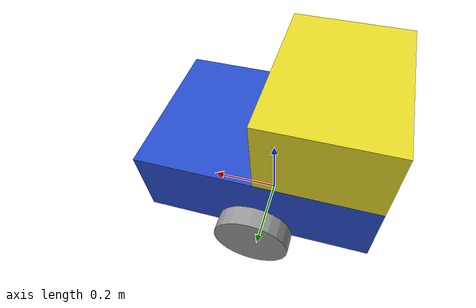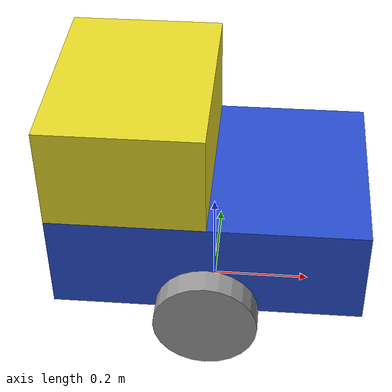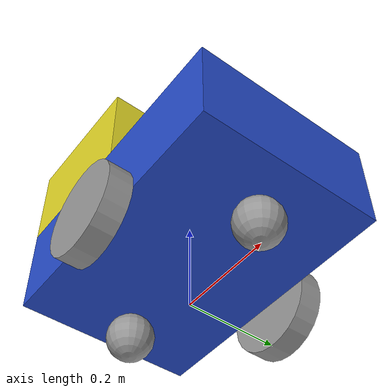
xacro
<?xml version="1.0"?>
<robot xmlns:xacro="http://www.ros.org/wiki/xacro">

    <!-- declare detail properties of diff bot -->

    <xacro:property name="base_length" value="0.6" />
    <xacro:property name="base_width" value="0.4" />
    <xacro:property name="base_height" value="0.2" />
    <xacro:property name="wheel_radius" value="0.1" />
    <xacro:property name="wheel_length" value="0.05" />

    <!-- declare link of diff bot -->

    <link name="base_footprint" />

    <link name="base_link">
        <visual>
            <geometry>
                <box size="${base_length} ${base_width} ${base_height}" />
            </geometry>
            <origin xyz="0 0 ${base_height / 2.0}" rpy="0 0 0" />
            <material name="blue" />
        </visual>
        <collision>
            <geometry>
                <box size="${base_length} ${base_width} ${base_height}" />
            </geometry>
            <origin xyz="0 0 ${base_height / 2.0}" rpy="0 0 0" />
        </collision>
        <xacro:box_inertia m="5.0" l="${2*base_length}" w="${2*base_width}" h="${2*base_height}"
                           xyz="0 0 ${base_height / 2.0}" rpy="0 0 0" />
    </link>

    <xacro:macro name="wheel_link" params="prefix">
        <link name="${prefix}_wheel_link">
            <visual>
                <geometry>
                    <cylinder radius="${wheel_radius}" length="${wheel_length}" />
                </geometry>
                <origin xyz="0 0 0" rpy="${pi / 2.0} 0 0" />
                <material name="grey" />
            </visual>
            <collision>
                <geometry>
                    <cylinder radius="${wheel_radius}" length="${wheel_length}" />
                </geometry>
                <origin xyz="0 0 0" rpy="${pi / 2.0} 0 0" />
            </collision>
            <xacro:cylinder_inertia m="1.0" r="${2*wheel_radius}" h="${2*wheel_length}"
                                    xyz="0 0 0" rpy="${pi / 2.0} 0 0" />
        </link>
    </xacro:macro>

    <xacro:wheel_link prefix="right" />
    <xacro:wheel_link prefix="left" />

    <link name="front_caster_wheel_link">
        <visual>
            <geometry>
                <sphere radius="${wheel_radius / 2.0}" />
            </geometry>
            <origin xyz="0 0 0" rpy="0 0 0" />
            <material name="grey" />
        </visual>
        <collision>
            <geometry>
                <sphere radius="${wheel_radius / 2.0}" />
            </geometry>
            <origin xyz="0 0 0" rpy="0 0 0" />
        </collision>
        <xacro:sphere_inertia m="0.5" r="${2*wheel_radius / 2.0}"
                              xyz="0 0 0" rpy="0 0 0" />
    </link>

    <link name="behind_caster_wheel_link">
        <visual>
            <geometry>
                <sphere radius="${wheel_radius / 2.0}" />
            </geometry>
            <origin xyz="0 0 0" rpy="0 0 0" />
            <material name="grey" />
        </visual>
        <collision>
            <geometry>
                <sphere radius="${wheel_radius / 2.0}" />
            </geometry>
            <origin xyz="0 0 0" rpy="0 0 0" />
        </collision>
        <xacro:sphere_inertia m="0.5" r="${2*wheel_radius / 2.0}"
                              xyz="0 0 0" rpy="0 0 0" />
    </link>

    <link name="third_floor_link">
        <visual>
            <geometry>
                <box size="${base_length/2} ${base_width} ${base_height}" />
            </geometry>
            <origin xyz="0 0 0" rpy="0 0 0" />
            <material name="yellow" />
        </visual>
        <collision>
            <geometry>
                <box size="${base_length/2} ${base_width} ${base_height}" />
            </geometry>
            <origin xyz="0 0 0" rpy="0 0 0" />
        </collision>
        <xacro:box_inertia m="5.0" l="${base_length}" w="${2*base_width}" h="${2*base_height}"
                           xyz="0 0 0" rpy="0 0 0" />
    </link>

    <link name="imu_link">
        <visual>
            <origin xyz="0.0 0.0 0.0" rpy="0.0 0.0 0.0"/>
            <geometry>
                <box size="0.0208 0.0158 0.0016"/>
            </geometry>
        </visual>
        <collision>
            <origin xyz="0.0 0.0 0.0" rpy="0.0 0.0 0.0"/>
            <geometry>
            <box size="0.0208 0.0158 0.0016"/>
            </geometry>
        </collision>
    </link>
    <!-- declare joint of diff bot -->

    <joint name="base_joint" type="fixed">
        <parent link="base_footprint" />
        <child link="base_link" />
        <origin xyz="0 0 ${wheel_radius}" rpy="0 0 0"/>
    </joint>

    <joint name="base_right_wheel_joint" type="continuous">
        <parent link="base_link" />
        <child link="right_wheel_link" />
        <origin xyz="0 ${-(base_width + wheel_length) / 2.0} 0" rpy="0 0 0" />
        <axis xyz="0 1 0" />
    </joint>

    <joint name="base_left_wheel_joint" type="continuous">
        <parent link="base_link" />
        <child link="left_wheel_link" />
        <origin xyz="0 ${(base_width + wheel_length) / 2.0} 0" rpy="0 0 0" />
        <axis xyz="0 1 0" />
    </joint>

    <joint name="base_front_caster_wheel_joint" type="fixed">
        <parent link="base_link" />
        <child link="front_caster_wheel_link" />
        <origin xyz="${base_length / 3.0} 0 ${-wheel_radius / 2.0}" rpy="0 0 0" />
    </joint>

    <joint name="base_behind_caster_wheel_joint" type="fixed">
        <parent link="base_link" />
        <child link="behind_caster_wheel_link" />
        <origin xyz="${-base_length / 3.0} 0 ${-wheel_radius / 2.0}" rpy="0 0 0" />
    </joint>

    <joint name="third_floor_joint" type="fixed">
        <parent link="base_link"/>
        <child link="third_floor_link"/>
        <origin xyz="${-base_length/4} 0.0 ${1.5*base_height}" rpy="0.0 0.0 0.0"/>
    </joint>

    <joint name="imu_joint" type="fixed">
        <parent link="base_link"/>
        <child link="imu_link"/>
        <origin xyz="${-base_length*0.3976} ${-base_width*0.3533} ${base_height + 0.0233}" rpy="0.0 0.0 ${-pi/2}"/>
    </joint>
</robot>
